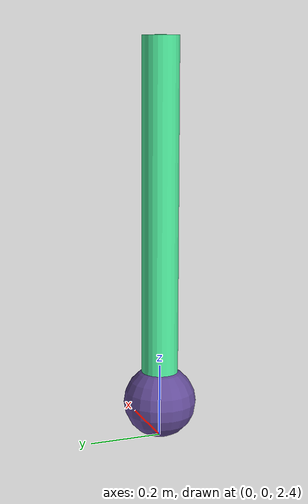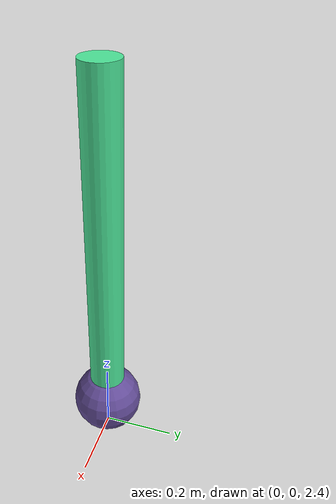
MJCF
<mujoco>
    <option gravity="0 0 -9.81 " />
    <worldbody>
        <light diffuse=".5 .5 .5" pos="0 0 2" dir="0 0 -1" />
        <geom type="plane" size="4 4 0.1" rgba=".5 .5 .5 1" />
        <body pos="0 0 3" euler="0 0 0">
            <joint type="hinge" name="joint0" axis="-1 0 0" pos="0 0 0.5" />
            <geom type="cylinder" size=".05 .5"  mass="0" rgba="0.3 0.9 0.6 1"/>

            <body pos="0 0 -.5" euler="0 0 0">
              <geom type="sphere" size=".1" mass="1" rgba="0.39 0.3 0.6 1"/>

            </body>

        </body>
    </worldbody>
    <actuator>
        <motor name="torque" joint="joint0" gear="1" ctrllimited="true" ctrlrange="-100 100" />
        <position name="position_servo" joint="joint0" kp="0"  />
        <velocity name="velocity_servo" joint="joint0" kv="0" />
    </actuator>

</mujoco>
